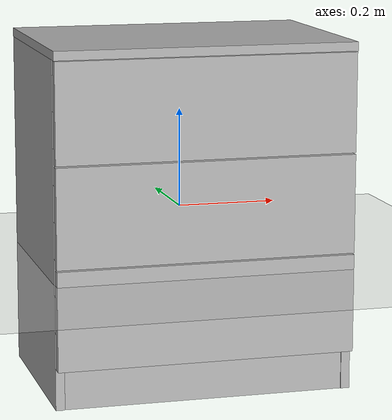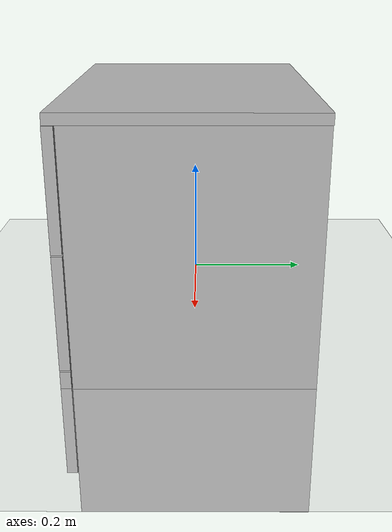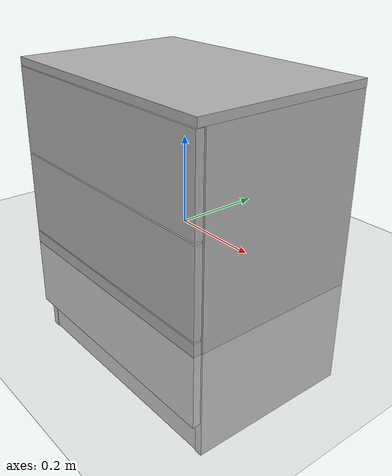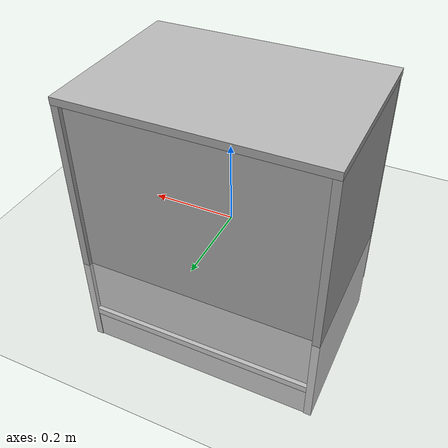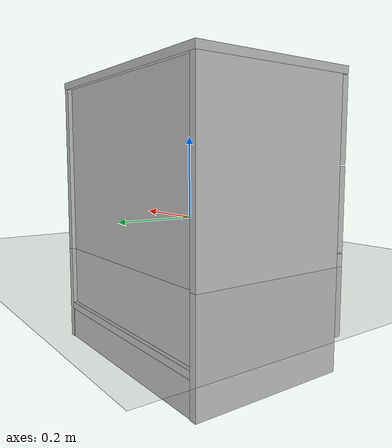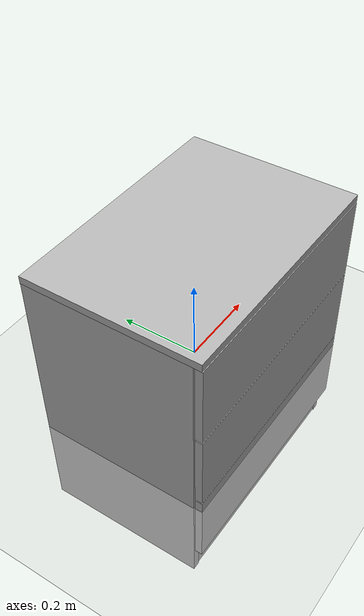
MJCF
<mujoco model="editor3d_model">
  <compiler angle="radian"/>

  <asset>
    <mesh name="ekk7552gle_mesh_0" vertex="341 -200 9 341 -200 -9 341 200 9 341 200 -9 -341 -200 9 -341 -200 -9 -341 200 9 -341 200 -9" face="1 3 2 2 0 1 5 1 0 0 4 5 7 5 4 4 6 7 3 7 6 6 2 3 1 5 7 7 3 1 4 0 2 2 6 4" scale="0.001 0.001 0.001"/>
    <mesh name="2h808ncmk2_mesh_0" vertex="341 -200 9 341 -200 -9 341 200 9 341 200 -9 -341 -200 9 -341 -200 -9 -341 200 9 -341 200 -9" face="1 3 2 2 0 1 5 1 0 0 4 5 7 5 4 4 6 7 3 7 6 6 2 3 1 5 7 7 3 1 4 0 2 2 6 4" scale="0.001 0.001 0.001"/>
    <mesh name="33ic2kf1j3_mesh_0" vertex="300 -210 9 300 -210 -9 300 210 9 300 210 -9 -300 -210 9 -300 -210 -9 -300 210 9 -300 210 -9" face="1 3 2 2 0 1 5 1 0 0 4 5 7 5 4 4 6 7 3 7 6 6 2 3 1 5 7 7 3 1 4 0 2 2 6 4" scale="0.001 0.001 0.001"/>
    <mesh name="m18bmkl6f8_mesh_0" vertex="282 -200 9 282 -200 -9 282 200 9 282 200 -9 -282 -200 9 -282 -200 -9 -282 200 9 -282 200 -9" face="1 3 2 2 0 1 5 1 0 0 4 5 7 5 4 4 6 7 3 7 6 6 2 3 1 5 7 7 3 1 4 0 2 2 6 4" scale="0.001 0.001 0.001"/>
    <mesh name="k55dj5llk7_mesh_0" vertex="282 -40 9 282 -40 -9 282 40 9 282 40 -9 -282 -40 9 -282 -40 -9 -282 40 9 -282 40 -9" face="1 3 2 2 0 1 5 1 0 0 4 5 7 5 4 4 6 7 3 7 6 6 2 3 1 5 7 7 3 1 4 0 2 2 6 4" scale="0.001 0.001 0.001"/>
    <mesh name="h78f75ee8f_mesh_0" vertex="282 -40 9 282 -40 -9 282 40 9 282 40 -9 -282 -40 9 -282 -40 -9 -282 40 9 -282 40 -9" face="1 3 2 2 0 1 5 1 0 0 4 5 7 5 4 4 6 7 3 7 6 6 2 3 1 5 7 7 3 1 4 0 2 2 6 4" scale="0.001 0.001 0.001"/>
    <mesh name="faban49gf0_mesh_0" vertex="297 -287 4.5 297 -287 -4.5 297 287 4.5 297 287 -4.5 -297 -287 4.5 -297 -287 -4.5 -297 287 4.5 -297 287 -4.5" face="1 3 2 2 0 1 5 1 0 0 4 5 7 5 4 4 6 7 3 7 6 6 2 3 1 5 7 7 3 1 4 0 2 2 6 4" scale="0.001 0.001 0.001"/>
    <mesh name="db1g38j2k0_mesh_0" vertex="267.5 150 78.8327 285.5 150 -83.8333 267.5 150 -83.8333 285.5 150 78.8327 285.5 -182 -83.8333 267.5 -182 -83.8333 285.5 -182 78.8327 267.5 -182 78.8327" face="2 0 3 3 1 2 5 2 1 1 4 5 7 5 4 4 6 7 0 7 6 6 3 0 2 5 7 7 0 2 4 1 3 3 6 4" scale="0.001 0.001 0.001"/>
    <mesh name="db1g38j2k0_mesh_1" vertex="-285.5 150 78.8327 -267.5 150 -83.8333 -285.5 150 -83.8333 -267.5 150 78.8327 -267.5 -182 -83.8333 -285.5 -182 -83.8333 -267.5 -182 78.8327 -285.5 -182 78.8327" face="2 0 3 3 1 2 5 2 1 1 4 5 7 5 4 4 6 7 0 7 6 6 3 0 2 5 7 7 0 2 4 1 3 3 6 4" scale="0.001 0.001 0.001"/>
    <mesh name="db1g38j2k0_mesh_2" vertex="267.5 150 78.8327 267.5 132 -83.8333 267.5 150 -83.8333 267.5 132 78.8327 -267.5 132 -83.8333 -267.5 150 -83.8333 -267.5 132 78.8327 -267.5 150 78.8327" face="2 0 3 3 1 2 5 2 1 1 4 5 7 5 4 4 6 7 0 7 6 6 3 0 2 5 7 7 0 2 4 1 3 3 6 4" scale="0.001 0.001 0.001"/>
    <mesh name="db1g38j2k0_mesh_3" vertex="267.5 -164 78.8327 267.5 -182 -83.8333 267.5 -164 -83.8333 267.5 -182 78.8327 -267.5 -182 -83.8333 -267.5 -164 -83.8333 -267.5 -182 78.8327 -267.5 -164 78.8327" face="2 0 3 3 1 2 5 2 1 1 4 5 7 5 4 4 6 7 0 7 6 6 3 0 2 5 7 7 0 2 4 1 3 3 6 4" scale="0.001 0.001 0.001"/>
    <mesh name="db1g38j2k0_mesh_4" vertex="272.5 137 -67.3333 272.5 -169 -67.3333 272.5 -169 -76.3333 272.5 137 -76.3333 -272.5 -169 -67.3333 -272.5 -169 -76.3333 -272.5 137 -67.3333 -272.5 137 -76.3333" face="2 3 0 0 1 2 5 2 1 1 4 5 7 5 4 4 6 7 3 7 6 6 0 3 2 5 7 7 3 2 4 1 0 0 6 4" scale="0.001 0.001 0.001"/>
    <mesh name="db1g38j2k0_mesh_5" vertex="298.5 -182 98.833 298.5 -200 -98.833 298.5 -182 -98.833 298.5 -200 98.833 -298.5 -200 -98.833 -298.5 -182 -98.833 -298.5 -200 98.833 -298.5 -182 98.833" face="2 0 3 3 1 2 5 2 1 1 4 5 7 5 4 4 6 7 0 7 6 6 3 0 2 5 7 7 0 2 4 1 3 3 6 4" scale="0.001 0.001 0.001"/>
    <mesh name="94d44fa58i_mesh_0" vertex="267.5 150 78.8327 285.5 150 -83.8333 267.5 150 -83.8333 285.5 150 78.8327 285.5 -182 -83.8333 267.5 -182 -83.8333 285.5 -182 78.8327 267.5 -182 78.8327" face="2 0 3 3 1 2 5 2 1 1 4 5 7 5 4 4 6 7 0 7 6 6 3 0 2 5 7 7 0 2 4 1 3 3 6 4" scale="0.001 0.001 0.001"/>
    <mesh name="94d44fa58i_mesh_1" vertex="-285.5 150 78.8327 -267.5 150 -83.8333 -285.5 150 -83.8333 -267.5 150 78.8327 -267.5 -182 -83.8333 -285.5 -182 -83.8333 -267.5 -182 78.8327 -285.5 -182 78.8327" face="2 0 3 3 1 2 5 2 1 1 4 5 7 5 4 4 6 7 0 7 6 6 3 0 2 5 7 7 0 2 4 1 3 3 6 4" scale="0.001 0.001 0.001"/>
    <mesh name="94d44fa58i_mesh_2" vertex="267.5 150 78.8327 267.5 132 -83.8333 267.5 150 -83.8333 267.5 132 78.8327 -267.5 132 -83.8333 -267.5 150 -83.8333 -267.5 132 78.8327 -267.5 150 78.8327" face="2 0 3 3 1 2 5 2 1 1 4 5 7 5 4 4 6 7 0 7 6 6 3 0 2 5 7 7 0 2 4 1 3 3 6 4" scale="0.001 0.001 0.001"/>
    <mesh name="94d44fa58i_mesh_3" vertex="267.5 -164 78.8327 267.5 -182 -83.8333 267.5 -164 -83.8333 267.5 -182 78.8327 -267.5 -182 -83.8333 -267.5 -164 -83.8333 -267.5 -182 78.8327 -267.5 -164 78.8327" face="2 0 3 3 1 2 5 2 1 1 4 5 7 5 4 4 6 7 0 7 6 6 3 0 2 5 7 7 0 2 4 1 3 3 6 4" scale="0.001 0.001 0.001"/>
    <mesh name="94d44fa58i_mesh_4" vertex="272.5 137 -67.3333 272.5 -169 -67.3333 272.5 -169 -76.3333 272.5 137 -76.3333 -272.5 -169 -67.3333 -272.5 -169 -76.3333 -272.5 137 -67.3333 -272.5 137 -76.3333" face="2 3 0 0 1 2 5 2 1 1 4 5 7 5 4 4 6 7 3 7 6 6 0 3 2 5 7 7 3 2 4 1 0 0 6 4" scale="0.001 0.001 0.001"/>
    <mesh name="94d44fa58i_mesh_5" vertex="298.5 -182 98.833 298.5 -200 -98.833 298.5 -182 -98.833 298.5 -200 98.833 -298.5 -200 -98.833 -298.5 -182 -98.833 -298.5 -200 98.833 -298.5 -182 98.833" face="2 0 3 3 1 2 5 2 1 1 4 5 7 5 4 4 6 7 0 7 6 6 3 0 2 5 7 7 0 2 4 1 3 3 6 4" scale="0.001 0.001 0.001"/>
    <mesh name="6f3d4719n3_mesh_0" vertex="267.5 150 78.8327 285.5 150 -83.8333 267.5 150 -83.8333 285.5 150 78.8327 285.5 -182 -83.8333 267.5 -182 -83.8333 285.5 -182 78.8327 267.5 -182 78.8327" face="2 0 3 3 1 2 5 2 1 1 4 5 7 5 4 4 6 7 0 7 6 6 3 0 2 5 7 7 0 2 4 1 3 3 6 4" scale="0.001 0.001 0.001"/>
    <mesh name="6f3d4719n3_mesh_1" vertex="-285.5 150 78.8327 -267.5 150 -83.8333 -285.5 150 -83.8333 -267.5 150 78.8327 -267.5 -182 -83.8333 -285.5 -182 -83.8333 -267.5 -182 78.8327 -285.5 -182 78.8327" face="2 0 3 3 1 2 5 2 1 1 4 5 7 5 4 4 6 7 0 7 6 6 3 0 2 5 7 7 0 2 4 1 3 3 6 4" scale="0.001 0.001 0.001"/>
    <mesh name="6f3d4719n3_mesh_2" vertex="267.5 150 78.8327 267.5 132 -83.8333 267.5 150 -83.8333 267.5 132 78.8327 -267.5 132 -83.8333 -267.5 150 -83.8333 -267.5 132 78.8327 -267.5 150 78.8327" face="2 0 3 3 1 2 5 2 1 1 4 5 7 5 4 4 6 7 0 7 6 6 3 0 2 5 7 7 0 2 4 1 3 3 6 4" scale="0.001 0.001 0.001"/>
    <mesh name="6f3d4719n3_mesh_3" vertex="267.5 -164 78.8327 267.5 -182 -83.8333 267.5 -164 -83.8333 267.5 -182 78.8327 -267.5 -182 -83.8333 -267.5 -164 -83.8333 -267.5 -182 78.8327 -267.5 -164 78.8327" face="2 0 3 3 1 2 5 2 1 1 4 5 7 5 4 4 6 7 0 7 6 6 3 0 2 5 7 7 0 2 4 1 3 3 6 4" scale="0.001 0.001 0.001"/>
    <mesh name="6f3d4719n3_mesh_4" vertex="272.5 137 -67.3333 272.5 -169 -67.3333 272.5 -169 -76.3333 272.5 137 -76.3333 -272.5 -169 -67.3333 -272.5 -169 -76.3333 -272.5 137 -67.3333 -272.5 137 -76.3333" face="2 3 0 0 1 2 5 2 1 1 4 5 7 5 4 4 6 7 3 7 6 6 0 3 2 5 7 7 3 2 4 1 0 0 6 4" scale="0.001 0.001 0.001"/>
    <mesh name="6f3d4719n3_mesh_5" vertex="298.5 -182 98.833 298.5 -200 -98.833 298.5 -182 -98.833 298.5 -200 98.833 -298.5 -200 -98.833 -298.5 -182 -98.833 -298.5 -200 98.833 -298.5 -182 98.833" face="2 0 3 3 1 2 5 2 1 1 4 5 7 5 4 4 6 7 0 7 6 6 3 0 2 5 7 7 0 2 4 1 3 3 6 4" scale="0.001 0.001 0.001"/>
  </asset>

  <worldbody>
    <body name="body_ekk7552gle" pos="-0.291 0 -0.009" quat="0.707107 0 0.707107 0">
      <geom name="geom_ekk7552gle_0" type="mesh" mass="1" rgba="0.7 0.7 0.7 1" mesh="ekk7552gle_mesh_0"/>
    </body>
    <body name="body_2h808ncmk2" pos="0.291 0 -0.009" quat="0.707107 0 0.707107 0">
      <geom name="geom_2h808ncmk2_0" type="mesh" mass="1" rgba="0.7 0.7 0.7 1" mesh="2h808ncmk2_mesh_0"/>
    </body>
    <body name="body_33ic2kf1j3" pos="0 -0.009 0.341">
      <geom name="geom_33ic2kf1j3_0" type="mesh" mass="1" rgba="0.7 0.7 0.7 1" mesh="33ic2kf1j3_mesh_0"/>
    </body>
    <body name="body_m18bmkl6f8" pos="0 0 -0.261">
      <geom name="geom_m18bmkl6f8_0" type="mesh" mass="1" rgba="0.7 0.7 0.7 1" mesh="m18bmkl6f8_mesh_0"/>
    </body>
    <body name="body_k55dj5llk7" pos="0 0.189 -0.31" quat="0.707107 0.707107 0 0">
      <geom name="geom_k55dj5llk7_0" type="mesh" mass="1" rgba="0.7 0.7 0.7 1" mesh="k55dj5llk7_mesh_0"/>
    </body>
    <body name="body_h78f75ee8f" pos="0 -0.189 -0.31" quat="0.707107 0.707107 0 0">
      <geom name="geom_h78f75ee8f_0" type="mesh" mass="1" rgba="0.7 0.7 0.7 1" mesh="h78f75ee8f_mesh_0"/>
    </body>
    <body name="body_faban49gf0" pos="0 0.1845 0.04" quat="0.5 0.5 0.5 -0.5">
      <geom name="geom_faban49gf0_0" type="mesh" mass="1" rgba="0.7 0.7 0.7 1" mesh="faban49gf0_mesh_0"/>
    </body>
    <body name="body_db1g38j2k0" pos="0 -0.02 -0.169667">
      <geom name="geom_db1g38j2k0_0" type="mesh" mass="1" rgba="0.7 0.7 0.7 1" mesh="db1g38j2k0_mesh_0"/>
      <geom name="geom_db1g38j2k0_1" type="mesh" mass="1" rgba="0.7 0.7 0.7 1" mesh="db1g38j2k0_mesh_1"/>
      <geom name="geom_db1g38j2k0_2" type="mesh" mass="1" rgba="0.7 0.7 0.7 1" mesh="db1g38j2k0_mesh_2"/>
      <geom name="geom_db1g38j2k0_3" type="mesh" mass="1" rgba="0.7 0.7 0.7 1" mesh="db1g38j2k0_mesh_3"/>
      <geom name="geom_db1g38j2k0_4" type="mesh" mass="1" rgba="0.7 0.7 0.7 1" mesh="db1g38j2k0_mesh_4"/>
      <geom name="geom_db1g38j2k0_5" type="mesh" mass="1" rgba="0.7 0.7 0.7 1" mesh="db1g38j2k0_mesh_5"/>
    </body>
    <body name="body_94d44fa58i" pos="0 -0.02 0.031">
      <geom name="geom_94d44fa58i_0" type="mesh" mass="1" rgba="0.7 0.7 0.7 1" mesh="94d44fa58i_mesh_0"/>
      <geom name="geom_94d44fa58i_1" type="mesh" mass="1" rgba="0.7 0.7 0.7 1" mesh="94d44fa58i_mesh_1"/>
      <geom name="geom_94d44fa58i_2" type="mesh" mass="1" rgba="0.7 0.7 0.7 1" mesh="94d44fa58i_mesh_2"/>
      <geom name="geom_94d44fa58i_3" type="mesh" mass="1" rgba="0.7 0.7 0.7 1" mesh="94d44fa58i_mesh_3"/>
      <geom name="geom_94d44fa58i_4" type="mesh" mass="1" rgba="0.7 0.7 0.7 1" mesh="94d44fa58i_mesh_4"/>
      <geom name="geom_94d44fa58i_5" type="mesh" mass="1" rgba="0.7 0.7 0.7 1" mesh="94d44fa58i_mesh_5"/>
    </body>
    <body name="body_6f3d4719n3" pos="0 -0.02 0.231667">
      <geom name="geom_6f3d4719n3_0" type="mesh" mass="1" rgba="0.7 0.7 0.7 1" mesh="6f3d4719n3_mesh_0"/>
      <geom name="geom_6f3d4719n3_1" type="mesh" mass="1" rgba="0.7 0.7 0.7 1" mesh="6f3d4719n3_mesh_1"/>
      <geom name="geom_6f3d4719n3_2" type="mesh" mass="1" rgba="0.7 0.7 0.7 1" mesh="6f3d4719n3_mesh_2"/>
      <geom name="geom_6f3d4719n3_3" type="mesh" mass="1" rgba="0.7 0.7 0.7 1" mesh="6f3d4719n3_mesh_3"/>
      <geom name="geom_6f3d4719n3_4" type="mesh" mass="1" rgba="0.7 0.7 0.7 1" mesh="6f3d4719n3_mesh_4"/>
      <geom name="geom_6f3d4719n3_5" type="mesh" mass="1" rgba="0.7 0.7 0.7 1" mesh="6f3d4719n3_mesh_5"/>
    </body>
    <body name="ground" pos="0 0 -0.1">
      <geom size="5 5 0.1" type="plane" rgba="0.8 0.8 0.8 1"/>
    </body>
  </worldbody>
</mujoco>
